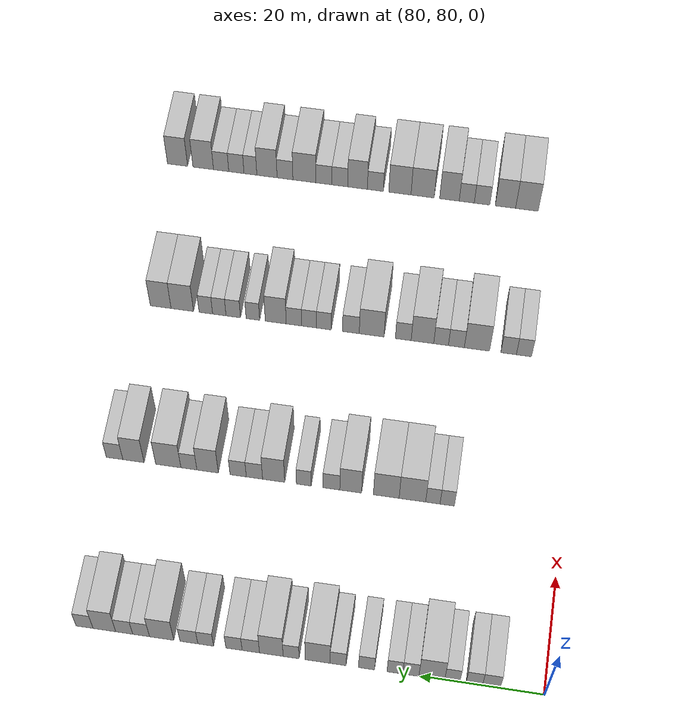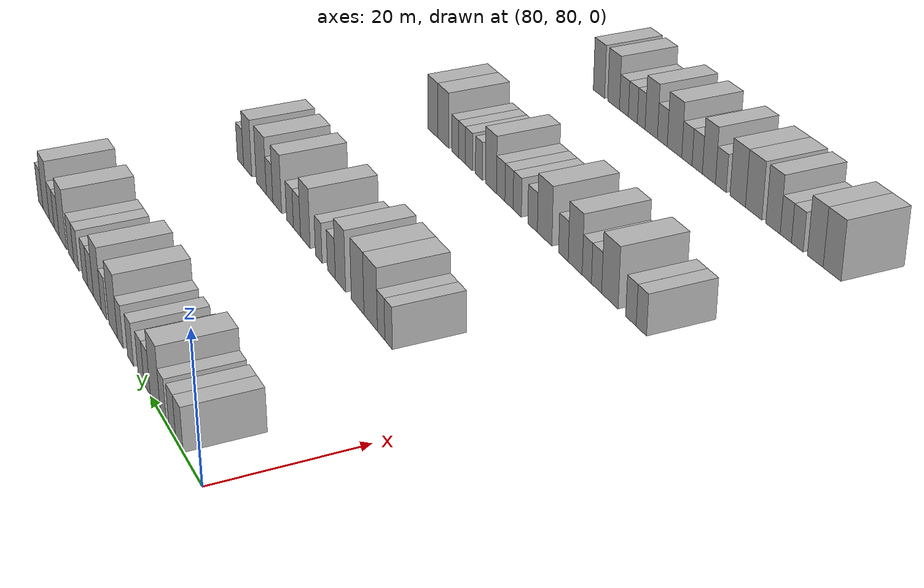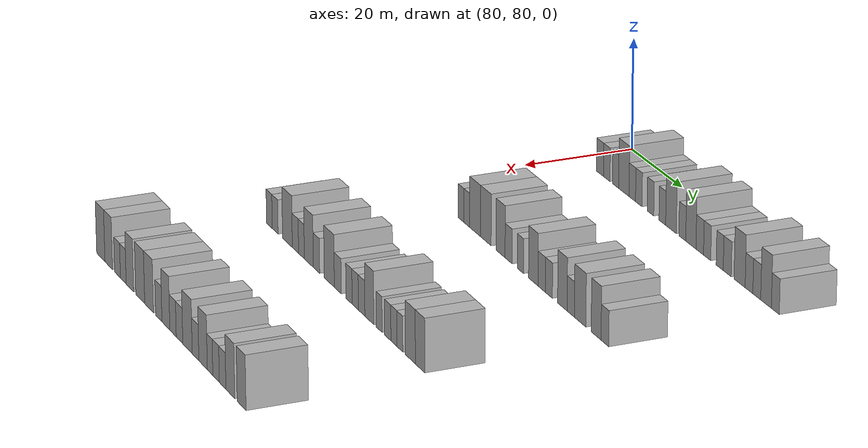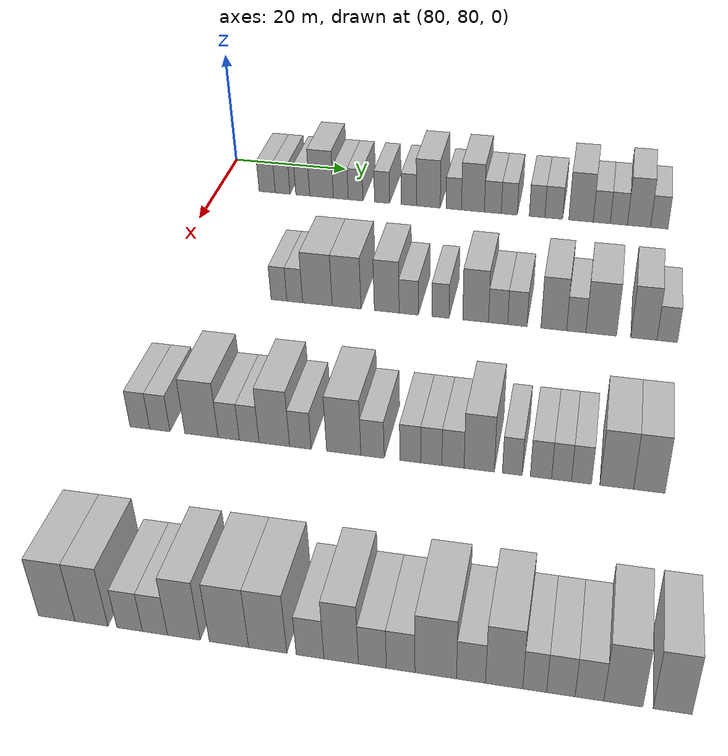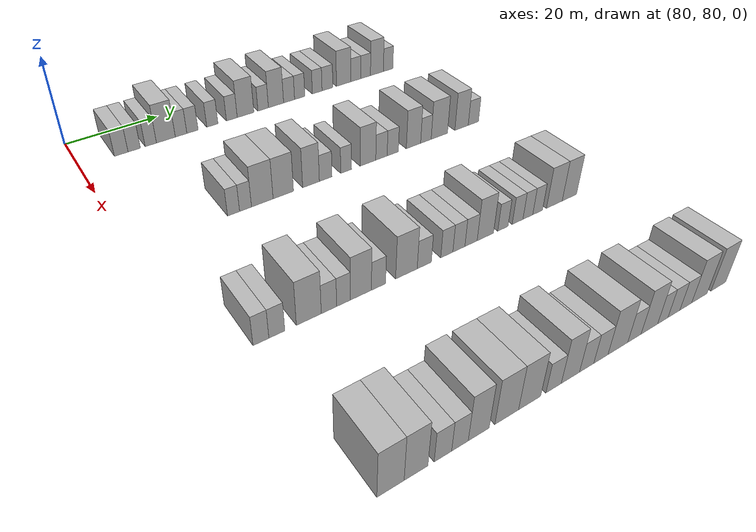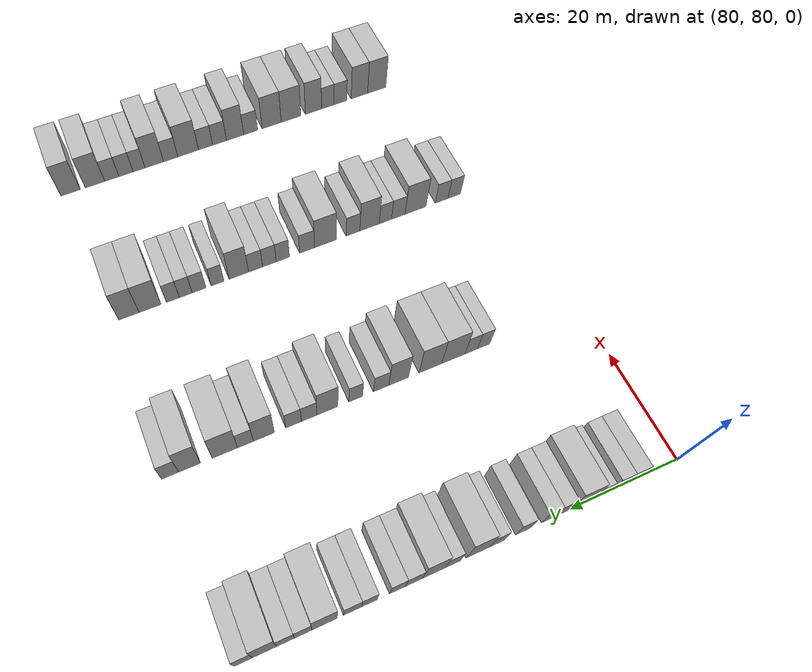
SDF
<sdf version="1.6">
 <world name="default">
  <model name="building_591">
   <static>1</static>
   <pose>85.0000 88.5599 0 0.000000 0.000000 0.000000</pose>
   <link name="link">
    <pose>0 0 3.00 0 0 0</pose>
    <collision name="collision"><geometry><box><size>10.0000 2.8432 6.0000</size></box></geometry></collision>
    <visual name="visual">
     <cast_shadows>0</cast_shadows>
     <geometry><box><size>10.0000 2.8432 6.0000</size></box></geometry>
     <material>
      <script>
       <uri>model://HANNAS_wall/materials/scripts</uri>
       <uri>model://HANNAS_wall/materials/textures</uri>
       <name>vrc/HANNAS_wall</name>
      </script>
     </material>
    </visual>
   </link>
  </model>
  <model name="building_592">
   <static>1</static>
   <pose>85.0000 91.2887 0 0.000000 0.000000 0.000000</pose>
   <link name="link">
    <pose>0 0 3.00 0 0 0</pose>
    <collision name="collision"><geometry><box><size>10.0000 2.6145 6.0000</size></box></geometry></collision>
    <visual name="visual">
     <cast_shadows>0</cast_shadows>
     <geometry><box><size>10.0000 2.6145 6.0000</size></box></geometry>
     <material>
      <script>
       <uri>model://HANNAS_wall/materials/scripts</uri>
       <uri>model://HANNAS_wall/materials/textures</uri>
       <name>vrc/HANNAS_wall</name>
      </script>
     </material>
    </visual>
   </link>
  </model>
  <model name="building_593">
   <static>1</static>
   <pose>85.0000 94.8194 0 0.000000 0.000000 0.000000</pose>
   <link name="link">
    <pose>0 0 3.00 0 0 0</pose>
    <collision name="collision"><geometry><box><size>10.0000 2.4469 6.0000</size></box></geometry></collision>
    <visual name="visual">
     <cast_shadows>0</cast_shadows>
     <geometry><box><size>10.0000 2.4469 6.0000</size></box></geometry>
     <material>
      <script>
       <uri>model://HANNAS_wall/materials/scripts</uri>
       <uri>model://HANNAS_wall/materials/textures</uri>
       <name>vrc/HANNAS_wall</name>
      </script>
     </material>
    </visual>
   </link>
  </model>
  <model name="building_594">
   <static>1</static>
   <pose>85.0000 98.1114 0 0.000000 0.000000 0.000000</pose>
   <link name="link">
    <pose>0 0 4.50 0 0 0</pose>
    <collision name="collision"><geometry><box><size>10.0000 4.1371 9.0000</size></box></geometry></collision>
    <visual name="visual">
     <cast_shadows>0</cast_shadows>
     <geometry><box><size>10.0000 4.1371 9.0000</size></box></geometry>
     <material>
      <script>
       <uri>model://HANNAS_wall/materials/scripts</uri>
       <uri>model://HANNAS_wall/materials/textures</uri>
       <name>vrc/HANNAS_wall</name>
      </script>
     </material>
    </visual>
   </link>
  </model>
  <model name="building_595">
   <static>1</static>
   <pose>85.0000 101.4752 0 0.000000 0.000000 0.000000</pose>
   <link name="link">
    <pose>0 0 3.00 0 0 0</pose>
    <collision name="collision"><geometry><box><size>10.0000 2.5905 6.0000</size></box></geometry></collision>
    <visual name="visual">
     <cast_shadows>0</cast_shadows>
     <geometry><box><size>10.0000 2.5905 6.0000</size></box></geometry>
     <material>
      <script>
       <uri>model://HANNAS_wall/materials/scripts</uri>
       <uri>model://HANNAS_wall/materials/textures</uri>
       <name>vrc/HANNAS_wall</name>
      </script>
     </material>
    </visual>
   </link>
  </model>
  <model name="building_596">
   <static>1</static>
   <pose>85.0000 104.0424 0 0.000000 0.000000 0.000000</pose>
   <link name="link">
    <pose>0 0 3.00 0 0 0</pose>
    <collision name="collision"><geometry><box><size>10.0000 2.5439 6.0000</size></box></geometry></collision>
    <visual name="visual">
     <cast_shadows>0</cast_shadows>
     <geometry><box><size>10.0000 2.5439 6.0000</size></box></geometry>
     <material>
      <script>
       <uri>model://HANNAS_wall/materials/scripts</uri>
       <uri>model://HANNAS_wall/materials/textures</uri>
       <name>vrc/HANNAS_wall</name>
      </script>
     </material>
    </visual>
   </link>
  </model>
  <model name="building_597">
   <static>1</static>
   <pose>85.0000 108.6125 0 0.000000 0.000000 0.000000</pose>
   <link name="link">
    <pose>0 0 3.00 0 0 0</pose>
    <collision name="collision"><geometry><box><size>10.0000 2.5963 6.0000</size></box></geometry></collision>
    <visual name="visual">
     <cast_shadows>0</cast_shadows>
     <geometry><box><size>10.0000 2.5963 6.0000</size></box></geometry>
     <material>
      <script>
       <uri>model://HANNAS_wall/materials/scripts</uri>
       <uri>model://HANNAS_wall/materials/textures</uri>
       <name>vrc/HANNAS_wall</name>
      </script>
     </material>
    </visual>
   </link>
  </model>
  <model name="building_598">
   <static>1</static>
   <pose>85.0000 113.1998 0 0.000000 0.000000 0.000000</pose>
   <link name="link">
    <pose>0 0 3.00 0 0 0</pose>
    <collision name="collision"><geometry><box><size>10.0000 2.5784 6.0000</size></box></geometry></collision>
    <visual name="visual">
     <cast_shadows>0</cast_shadows>
     <geometry><box><size>10.0000 2.5784 6.0000</size></box></geometry>
     <material>
      <script>
       <uri>model://HANNAS_wall/materials/scripts</uri>
       <uri>model://HANNAS_wall/materials/textures</uri>
       <name>vrc/HANNAS_wall</name>
      </script>
     </material>
    </visual>
   </link>
  </model>
  <model name="building_599">
   <static>1</static>
   <pose>85.0000 116.5124 0 0.000000 0.000000 0.000000</pose>
   <link name="link">
    <pose>0 0 4.50 0 0 0</pose>
    <collision name="collision"><geometry><box><size>10.0000 4.0468 9.0000</size></box></geometry></collision>
    <visual name="visual">
     <cast_shadows>0</cast_shadows>
     <geometry><box><size>10.0000 4.0468 9.0000</size></box></geometry>
     <material>
      <script>
       <uri>model://HANNAS_wall/materials/scripts</uri>
       <uri>model://HANNAS_wall/materials/textures</uri>
       <name>vrc/HANNAS_wall</name>
      </script>
     </material>
    </visual>
   </link>
  </model>
  <model name="building_600">
   <static>1</static>
   <pose>85.0000 120.8324 0 0.000000 0.000000 0.000000</pose>
   <link name="link">
    <pose>0 0 3.00 0 0 0</pose>
    <collision name="collision"><geometry><box><size>10.0000 2.5931 6.0000</size></box></geometry></collision>
    <visual name="visual">
     <cast_shadows>0</cast_shadows>
     <geometry><box><size>10.0000 2.5931 6.0000</size></box></geometry>
     <material>
      <script>
       <uri>model://HANNAS_wall/materials/scripts</uri>
       <uri>model://HANNAS_wall/materials/textures</uri>
       <name>vrc/HANNAS_wall</name>
      </script>
     </material>
    </visual>
   </link>
  </model>
  <model name="building_601">
   <static>1</static>
   <pose>85.0000 124.0520 0 0.000000 0.000000 0.000000</pose>
   <link name="link">
    <pose>0 0 4.50 0 0 0</pose>
    <collision name="collision"><geometry><box><size>10.0000 3.8462 9.0000</size></box></geometry></collision>
    <visual name="visual">
     <cast_shadows>0</cast_shadows>
     <geometry><box><size>10.0000 3.8462 9.0000</size></box></geometry>
     <material>
      <script>
       <uri>model://HANNAS_wall/materials/scripts</uri>
       <uri>model://HANNAS_wall/materials/textures</uri>
       <name>vrc/HANNAS_wall</name>
      </script>
     </material>
    </visual>
   </link>
  </model>
  <model name="building_602">
   <static>1</static>
   <pose>85.0000 127.3873 0 0.000000 0.000000 0.000000</pose>
   <link name="link">
    <pose>0 0 3.00 0 0 0</pose>
    <collision name="collision"><geometry><box><size>10.0000 2.8244 6.0000</size></box></geometry></collision>
    <visual name="visual">
     <cast_shadows>0</cast_shadows>
     <geometry><box><size>10.0000 2.8244 6.0000</size></box></geometry>
     <material>
      <script>
       <uri>model://HANNAS_wall/materials/scripts</uri>
       <uri>model://HANNAS_wall/materials/textures</uri>
       <name>vrc/HANNAS_wall</name>
      </script>
     </material>
    </visual>
   </link>
  </model>
  <model name="building_603">
   <static>1</static>
   <pose>85.0000 130.1325 0 0.000000 0.000000 0.000000</pose>
   <link name="link">
    <pose>0 0 3.00 0 0 0</pose>
    <collision name="collision"><geometry><box><size>10.0000 2.6658 6.0000</size></box></geometry></collision>
    <visual name="visual">
     <cast_shadows>0</cast_shadows>
     <geometry><box><size>10.0000 2.6658 6.0000</size></box></geometry>
     <material>
      <script>
       <uri>model://HANNAS_wall/materials/scripts</uri>
       <uri>model://HANNAS_wall/materials/textures</uri>
       <name>vrc/HANNAS_wall</name>
      </script>
     </material>
    </visual>
   </link>
  </model>
  <model name="building_604">
   <static>1</static>
   <pose>85.0000 134.7559 0 0.000000 0.000000 0.000000</pose>
   <link name="link">
    <pose>0 0 3.00 0 0 0</pose>
    <collision name="collision"><geometry><box><size>10.0000 2.5810 6.0000</size></box></geometry></collision>
    <visual name="visual">
     <cast_shadows>0</cast_shadows>
     <geometry><box><size>10.0000 2.5810 6.0000</size></box></geometry>
     <material>
      <script>
       <uri>model://HANNAS_wall/materials/scripts</uri>
       <uri>model://HANNAS_wall/materials/textures</uri>
       <name>vrc/HANNAS_wall</name>
      </script>
     </material>
    </visual>
   </link>
  </model>
  <model name="building_605">
   <static>1</static>
   <pose>85.0000 137.5102 0 0.000000 0.000000 0.000000</pose>
   <link name="link">
    <pose>0 0 3.00 0 0 0</pose>
    <collision name="collision"><geometry><box><size>10.0000 2.9276 6.0000</size></box></geometry></collision>
    <visual name="visual">
     <cast_shadows>0</cast_shadows>
     <geometry><box><size>10.0000 2.9276 6.0000</size></box></geometry>
     <material>
      <script>
       <uri>model://HANNAS_wall/materials/scripts</uri>
       <uri>model://HANNAS_wall/materials/textures</uri>
       <name>vrc/HANNAS_wall</name>
      </script>
     </material>
    </visual>
   </link>
  </model>
  <model name="building_606">
   <static>1</static>
   <pose>85.0000 141.9765 0 0.000000 0.000000 0.000000</pose>
   <link name="link">
    <pose>0 0 4.50 0 0 0</pose>
    <collision name="collision"><geometry><box><size>10.0000 4.0051 9.0000</size></box></geometry></collision>
    <visual name="visual">
     <cast_shadows>0</cast_shadows>
     <geometry><box><size>10.0000 4.0051 9.0000</size></box></geometry>
     <material>
      <script>
       <uri>model://HANNAS_wall/materials/scripts</uri>
       <uri>model://HANNAS_wall/materials/textures</uri>
       <name>vrc/HANNAS_wall</name>
      </script>
     </material>
    </visual>
   </link>
  </model>
  <model name="building_607">
   <static>1</static>
   <pose>85.0000 145.3599 0 0.000000 0.000000 0.000000</pose>
   <link name="link">
    <pose>0 0 3.00 0 0 0</pose>
    <collision name="collision"><geometry><box><size>10.0000 2.7617 6.0000</size></box></geometry></collision>
    <visual name="visual">
     <cast_shadows>0</cast_shadows>
     <geometry><box><size>10.0000 2.7617 6.0000</size></box></geometry>
     <material>
      <script>
       <uri>model://HANNAS_wall/materials/scripts</uri>
       <uri>model://HANNAS_wall/materials/textures</uri>
       <name>vrc/HANNAS_wall</name>
      </script>
     </material>
    </visual>
   </link>
  </model>
  <model name="building_608">
   <static>1</static>
   <pose>85.0000 148.1356 0 0.000000 0.000000 0.000000</pose>
   <link name="link">
    <pose>0 0 3.00 0 0 0</pose>
    <collision name="collision"><geometry><box><size>10.0000 2.7896 6.0000</size></box></geometry></collision>
    <visual name="visual">
     <cast_shadows>0</cast_shadows>
     <geometry><box><size>10.0000 2.7896 6.0000</size></box></geometry>
     <material>
      <script>
       <uri>model://HANNAS_wall/materials/scripts</uri>
       <uri>model://HANNAS_wall/materials/textures</uri>
       <name>vrc/HANNAS_wall</name>
      </script>
     </material>
    </visual>
   </link>
  </model>
  <model name="building_609">
   <static>1</static>
   <pose>85.0000 151.4025 0 0.000000 0.000000 0.000000</pose>
   <link name="link">
    <pose>0 0 4.50 0 0 0</pose>
    <collision name="collision"><geometry><box><size>10.0000 3.7443 9.0000</size></box></geometry></collision>
    <visual name="visual">
     <cast_shadows>0</cast_shadows>
     <geometry><box><size>10.0000 3.7443 9.0000</size></box></geometry>
     <material>
      <script>
       <uri>model://HANNAS_wall/materials/scripts</uri>
       <uri>model://HANNAS_wall/materials/textures</uri>
       <name>vrc/HANNAS_wall</name>
      </script>
     </material>
    </visual>
   </link>
  </model>
  <model name="building_610">
   <static>1</static>
   <pose>85.0000 154.6747 0 0.000000 0.000000 0.000000</pose>
   <link name="link">
    <pose>0 0 3.00 0 0 0</pose>
    <collision name="collision"><geometry><box><size>10.0000 2.7999 6.0000</size></box></geometry></collision>
    <visual name="visual">
     <cast_shadows>0</cast_shadows>
     <geometry><box><size>10.0000 2.7999 6.0000</size></box></geometry>
     <material>
      <script>
       <uri>model://HANNAS_wall/materials/scripts</uri>
       <uri>model://HANNAS_wall/materials/textures</uri>
       <name>vrc/HANNAS_wall</name>
      </script>
     </material>
    </visual>
   </link>
  </model>
  <model name="building_817">
   <static>1</static>
   <pose>115.0000 99.2062 0 0.000000 0.000000 0.000000</pose>
   <link name="link">
    <pose>0 0 3.00 0 0 0</pose>
    <collision name="collision"><geometry><box><size>10.0000 2.4151 6.0000</size></box></geometry></collision>
    <visual name="visual">
     <cast_shadows>0</cast_shadows>
     <geometry><box><size>10.0000 2.4151 6.0000</size></box></geometry>
     <material>
      <script>
       <uri>model://HANNAS_wall/materials/scripts</uri>
       <uri>model://HANNAS_wall/materials/textures</uri>
       <name>vrc/HANNAS_wall</name>
      </script>
     </material>
    </visual>
   </link>
  </model>
  <model name="building_818">
   <static>1</static>
   <pose>115.0000 101.6250 0 0.000000 0.000000 0.000000</pose>
   <link name="link">
    <pose>0 0 3.00 0 0 0</pose>
    <collision name="collision"><geometry><box><size>10.0000 2.4226 6.0000</size></box></geometry></collision>
    <visual name="visual">
     <cast_shadows>0</cast_shadows>
     <geometry><box><size>10.0000 2.4226 6.0000</size></box></geometry>
     <material>
      <script>
       <uri>model://HANNAS_wall/materials/scripts</uri>
       <uri>model://HANNAS_wall/materials/textures</uri>
       <name>vrc/HANNAS_wall</name>
      </script>
     </material>
    </visual>
   </link>
  </model>
  <model name="building_819">
   <static>1</static>
   <pose>115.0000 105.0814 0 0.000000 0.000000 0.000000</pose>
   <link name="link">
    <pose>0 0 4.50 0 0 0</pose>
    <collision name="collision"><geometry><box><size>10.0000 4.4901 9.0000</size></box></geometry></collision>
    <visual name="visual">
     <cast_shadows>0</cast_shadows>
     <geometry><box><size>10.0000 4.4901 9.0000</size></box></geometry>
     <material>
      <script>
       <uri>model://HANNAS_wall/materials/scripts</uri>
       <uri>model://HANNAS_wall/materials/textures</uri>
       <name>vrc/HANNAS_wall</name>
      </script>
     </material>
    </visual>
   </link>
  </model>
  <model name="building_820">
   <static>1</static>
   <pose>115.0000 109.5029 0 0.000000 0.000000 0.000000</pose>
   <link name="link">
    <pose>0 0 4.50 0 0 0</pose>
    <collision name="collision"><geometry><box><size>10.0000 4.3530 9.0000</size></box></geometry></collision>
    <visual name="visual">
     <cast_shadows>0</cast_shadows>
     <geometry><box><size>10.0000 4.3530 9.0000</size></box></geometry>
     <material>
      <script>
       <uri>model://HANNAS_wall/materials/scripts</uri>
       <uri>model://HANNAS_wall/materials/textures</uri>
       <name>vrc/HANNAS_wall</name>
      </script>
     </material>
    </visual>
   </link>
  </model>
  <model name="building_821">
   <static>1</static>
   <pose>115.0000 115.5284 0 0.000000 0.000000 0.000000</pose>
   <link name="link">
    <pose>0 0 4.50 0 0 0</pose>
    <collision name="collision"><geometry><box><size>10.0000 3.6979 9.0000</size></box></geometry></collision>
    <visual name="visual">
     <cast_shadows>0</cast_shadows>
     <geometry><box><size>10.0000 3.6979 9.0000</size></box></geometry>
     <material>
      <script>
       <uri>model://HANNAS_wall/materials/scripts</uri>
       <uri>model://HANNAS_wall/materials/textures</uri>
       <name>vrc/HANNAS_wall</name>
      </script>
     </material>
    </visual>
   </link>
  </model>
  <model name="building_822">
   <static>1</static>
   <pose>115.0000 118.8068 0 0.000000 0.000000 0.000000</pose>
   <link name="link">
    <pose>0 0 3.00 0 0 0</pose>
    <collision name="collision"><geometry><box><size>10.0000 2.8588 6.0000</size></box></geometry></collision>
    <visual name="visual">
     <cast_shadows>0</cast_shadows>
     <geometry><box><size>10.0000 2.8588 6.0000</size></box></geometry>
     <material>
      <script>
       <uri>model://HANNAS_wall/materials/scripts</uri>
       <uri>model://HANNAS_wall/materials/textures</uri>
       <name>vrc/HANNAS_wall</name>
      </script>
     </material>
    </visual>
   </link>
  </model>
  <model name="building_823">
   <static>1</static>
   <pose>115.0000 123.4999 0 0.000000 0.000000 0.000000</pose>
   <link name="link">
    <pose>0 0 3.00 0 0 0</pose>
    <collision name="collision"><geometry><box><size>10.0000 2.5275 6.0000</size></box></geometry></collision>
    <visual name="visual">
     <cast_shadows>0</cast_shadows>
     <geometry><box><size>10.0000 2.5275 6.0000</size></box></geometry>
     <material>
      <script>
       <uri>model://HANNAS_wall/materials/scripts</uri>
       <uri>model://HANNAS_wall/materials/textures</uri>
       <name>vrc/HANNAS_wall</name>
      </script>
     </material>
    </visual>
   </link>
  </model>
  <model name="building_824">
   <static>1</static>
   <pose>115.0000 128.6530 0 0.000000 0.000000 0.000000</pose>
   <link name="link">
    <pose>0 0 4.50 0 0 0</pose>
    <collision name="collision"><geometry><box><size>10.0000 3.7787 9.0000</size></box></geometry></collision>
    <visual name="visual">
     <cast_shadows>0</cast_shadows>
     <geometry><box><size>10.0000 3.7787 9.0000</size></box></geometry>
     <material>
      <script>
       <uri>model://HANNAS_wall/materials/scripts</uri>
       <uri>model://HANNAS_wall/materials/textures</uri>
       <name>vrc/HANNAS_wall</name>
      </script>
     </material>
    </visual>
   </link>
  </model>
  <model name="building_825">
   <static>1</static>
   <pose>115.0000 131.9373 0 0.000000 0.000000 0.000000</pose>
   <link name="link">
    <pose>0 0 3.00 0 0 0</pose>
    <collision name="collision"><geometry><box><size>10.0000 2.7900 6.0000</size></box></geometry></collision>
    <visual name="visual">
     <cast_shadows>0</cast_shadows>
     <geometry><box><size>10.0000 2.7900 6.0000</size></box></geometry>
     <material>
      <script>
       <uri>model://HANNAS_wall/materials/scripts</uri>
       <uri>model://HANNAS_wall/materials/textures</uri>
       <name>vrc/HANNAS_wall</name>
      </script>
     </material>
    </visual>
   </link>
  </model>
  <model name="building_826">
   <static>1</static>
   <pose>115.0000 134.7272 0 0.000000 0.000000 0.000000</pose>
   <link name="link">
    <pose>0 0 3.00 0 0 0</pose>
    <collision name="collision"><geometry><box><size>10.0000 2.7896 6.0000</size></box></geometry></collision>
    <visual name="visual">
     <cast_shadows>0</cast_shadows>
     <geometry><box><size>10.0000 2.7896 6.0000</size></box></geometry>
     <material>
      <script>
       <uri>model://HANNAS_wall/materials/scripts</uri>
       <uri>model://HANNAS_wall/materials/textures</uri>
       <name>vrc/HANNAS_wall</name>
      </script>
     </material>
    </visual>
   </link>
  </model>
  <model name="building_827">
   <static>1</static>
   <pose>115.0000 139.9612 0 0.000000 0.000000 0.000000</pose>
   <link name="link">
    <pose>0 0 4.50 0 0 0</pose>
    <collision name="collision"><geometry><box><size>10.0000 3.6786 9.0000</size></box></geometry></collision>
    <visual name="visual">
     <cast_shadows>0</cast_shadows>
     <geometry><box><size>10.0000 3.6786 9.0000</size></box></geometry>
     <material>
      <script>
       <uri>model://HANNAS_wall/materials/scripts</uri>
       <uri>model://HANNAS_wall/materials/textures</uri>
       <name>vrc/HANNAS_wall</name>
      </script>
     </material>
    </visual>
   </link>
  </model>
  <model name="building_828">
   <static>1</static>
   <pose>115.0000 143.1754 0 0.000000 0.000000 0.000000</pose>
   <link name="link">
    <pose>0 0 3.00 0 0 0</pose>
    <collision name="collision"><geometry><box><size>10.0000 2.7498 6.0000</size></box></geometry></collision>
    <visual name="visual">
     <cast_shadows>0</cast_shadows>
     <geometry><box><size>10.0000 2.7498 6.0000</size></box></geometry>
     <material>
      <script>
       <uri>model://HANNAS_wall/materials/scripts</uri>
       <uri>model://HANNAS_wall/materials/textures</uri>
       <name>vrc/HANNAS_wall</name>
      </script>
     </material>
    </visual>
   </link>
  </model>
  <model name="building_829">
   <static>1</static>
   <pose>115.0000 146.7240 0 0.000000 0.000000 0.000000</pose>
   <link name="link">
    <pose>0 0 4.50 0 0 0</pose>
    <collision name="collision"><geometry><box><size>10.0000 4.3474 9.0000</size></box></geometry></collision>
    <visual name="visual">
     <cast_shadows>0</cast_shadows>
     <geometry><box><size>10.0000 4.3474 9.0000</size></box></geometry>
     <material>
      <script>
       <uri>model://HANNAS_wall/materials/scripts</uri>
       <uri>model://HANNAS_wall/materials/textures</uri>
       <name>vrc/HANNAS_wall</name>
      </script>
     </material>
    </visual>
   </link>
  </model>
  <model name="building_830">
   <static>1</static>
   <pose>115.0000 152.7351 0 0.000000 0.000000 0.000000</pose>
   <link name="link">
    <pose>0 0 4.50 0 0 0</pose>
    <collision name="collision"><geometry><box><size>10.0000 3.6748 9.0000</size></box></geometry></collision>
    <visual name="visual">
     <cast_shadows>0</cast_shadows>
     <geometry><box><size>10.0000 3.6748 9.0000</size></box></geometry>
     <material>
      <script>
       <uri>model://HANNAS_wall/materials/scripts</uri>
       <uri>model://HANNAS_wall/materials/textures</uri>
       <name>vrc/HANNAS_wall</name>
      </script>
     </material>
    </visual>
   </link>
  </model>
  <model name="building_831">
   <static>1</static>
   <pose>115.0000 156.0014 0 0.000000 0.000000 0.000000</pose>
   <link name="link">
    <pose>0 0 3.00 0 0 0</pose>
    <collision name="collision"><geometry><box><size>10.0000 2.8578 6.0000</size></box></geometry></collision>
    <visual name="visual">
     <cast_shadows>0</cast_shadows>
     <geometry><box><size>10.0000 2.8578 6.0000</size></box></geometry>
     <material>
      <script>
       <uri>model://HANNAS_wall/materials/scripts</uri>
       <uri>model://HANNAS_wall/materials/textures</uri>
       <name>vrc/HANNAS_wall</name>
      </script>
     </material>
    </visual>
   </link>
  </model>
  <model name="building_1053">
   <static>1</static>
   <pose>145.0000 89.2876 0 0.000000 0.000000 0.000000</pose>
   <link name="link">
    <pose>0 0 3.00 0 0 0</pose>
    <collision name="collision"><geometry><box><size>10.0000 2.6560 6.0000</size></box></geometry></collision>
    <visual name="visual">
     <cast_shadows>0</cast_shadows>
     <geometry><box><size>10.0000 2.6560 6.0000</size></box></geometry>
     <material>
      <script>
       <uri>model://HANNAS_wall/materials/scripts</uri>
       <uri>model://HANNAS_wall/materials/textures</uri>
       <name>vrc/HANNAS_wall</name>
      </script>
     </material>
    </visual>
   </link>
  </model>
  <model name="building_1054">
   <static>1</static>
   <pose>145.0000 91.9745 0 0.000000 0.000000 0.000000</pose>
   <link name="link">
    <pose>0 0 3.00 0 0 0</pose>
    <collision name="collision"><geometry><box><size>10.0000 2.7177 6.0000</size></box></geometry></collision>
    <visual name="visual">
     <cast_shadows>0</cast_shadows>
     <geometry><box><size>10.0000 2.7177 6.0000</size></box></geometry>
     <material>
      <script>
       <uri>model://HANNAS_wall/materials/scripts</uri>
       <uri>model://HANNAS_wall/materials/textures</uri>
       <name>vrc/HANNAS_wall</name>
      </script>
     </material>
    </visual>
   </link>
  </model>
  <model name="building_1055">
   <static>1</static>
   <pose>145.0000 97.5526 0 0.000000 0.000000 0.000000</pose>
   <link name="link">
    <pose>0 0 4.50 0 0 0</pose>
    <collision name="collision"><geometry><box><size>10.0000 4.4385 9.0000</size></box></geometry></collision>
    <visual name="visual">
     <cast_shadows>0</cast_shadows>
     <geometry><box><size>10.0000 4.4385 9.0000</size></box></geometry>
     <material>
      <script>
       <uri>model://HANNAS_wall/materials/scripts</uri>
       <uri>model://HANNAS_wall/materials/textures</uri>
       <name>vrc/HANNAS_wall</name>
      </script>
     </material>
    </visual>
   </link>
  </model>
  <model name="building_1056">
   <static>1</static>
   <pose>145.0000 101.1746 0 0.000000 0.000000 0.000000</pose>
   <link name="link">
    <pose>0 0 3.00 0 0 0</pose>
    <collision name="collision"><geometry><box><size>10.0000 2.8057 6.0000</size></box></geometry></collision>
    <visual name="visual">
     <cast_shadows>0</cast_shadows>
     <geometry><box><size>10.0000 2.8057 6.0000</size></box></geometry>
     <material>
      <script>
       <uri>model://HANNAS_wall/materials/scripts</uri>
       <uri>model://HANNAS_wall/materials/textures</uri>
       <name>vrc/HANNAS_wall</name>
      </script>
     </material>
    </visual>
   </link>
  </model>
  <model name="building_1057">
   <static>1</static>
   <pose>145.0000 103.8728 0 0.000000 0.000000 0.000000</pose>
   <link name="link">
    <pose>0 0 3.00 0 0 0</pose>
    <collision name="collision"><geometry><box><size>10.0000 2.5907 6.0000</size></box></geometry></collision>
    <visual name="visual">
     <cast_shadows>0</cast_shadows>
     <geometry><box><size>10.0000 2.5907 6.0000</size></box></geometry>
     <material>
      <script>
       <uri>model://HANNAS_wall/materials/scripts</uri>
       <uri>model://HANNAS_wall/materials/textures</uri>
       <name>vrc/HANNAS_wall</name>
      </script>
     </material>
    </visual>
   </link>
  </model>
  <model name="building_1058">
   <static>1</static>
   <pose>145.0000 107.1646 0 0.000000 0.000000 0.000000</pose>
   <link name="link">
    <pose>0 0 4.50 0 0 0</pose>
    <collision name="collision"><geometry><box><size>10.0000 3.9927 9.0000</size></box></geometry></collision>
    <visual name="visual">
     <cast_shadows>0</cast_shadows>
     <geometry><box><size>10.0000 3.9927 9.0000</size></box></geometry>
     <material>
      <script>
       <uri>model://HANNAS_wall/materials/scripts</uri>
       <uri>model://HANNAS_wall/materials/textures</uri>
       <name>vrc/HANNAS_wall</name>
      </script>
     </material>
    </visual>
   </link>
  </model>
  <model name="building_1059">
   <static>1</static>
   <pose>145.0000 110.5606 0 0.000000 0.000000 0.000000</pose>
   <link name="link">
    <pose>0 0 3.00 0 0 0</pose>
    <collision name="collision"><geometry><box><size>10.0000 2.7993 6.0000</size></box></geometry></collision>
    <visual name="visual">
     <cast_shadows>0</cast_shadows>
     <geometry><box><size>10.0000 2.7993 6.0000</size></box></geometry>
     <material>
      <script>
       <uri>model://HANNAS_wall/materials/scripts</uri>
       <uri>model://HANNAS_wall/materials/textures</uri>
       <name>vrc/HANNAS_wall</name>
      </script>
     </material>
    </visual>
   </link>
  </model>
  <model name="building_1060">
   <static>1</static>
   <pose>145.0000 116.1626 0 0.000000 0.000000 0.000000</pose>
   <link name="link">
    <pose>0 0 4.50 0 0 0</pose>
    <collision name="collision"><geometry><box><size>10.0000 4.4048 9.0000</size></box></geometry></collision>
    <visual name="visual">
     <cast_shadows>0</cast_shadows>
     <geometry><box><size>10.0000 4.4048 9.0000</size></box></geometry>
     <material>
      <script>
       <uri>model://HANNAS_wall/materials/scripts</uri>
       <uri>model://HANNAS_wall/materials/textures</uri>
       <name>vrc/HANNAS_wall</name>
      </script>
     </material>
    </visual>
   </link>
  </model>
  <model name="building_1061">
   <static>1</static>
   <pose>145.0000 119.8513 0 0.000000 0.000000 0.000000</pose>
   <link name="link">
    <pose>0 0 3.00 0 0 0</pose>
    <collision name="collision"><geometry><box><size>10.0000 2.9725 6.0000</size></box></geometry></collision>
    <visual name="visual">
     <cast_shadows>0</cast_shadows>
     <geometry><box><size>10.0000 2.9725 6.0000</size></box></geometry>
     <material>
      <script>
       <uri>model://HANNAS_wall/materials/scripts</uri>
       <uri>model://HANNAS_wall/materials/textures</uri>
       <name>vrc/HANNAS_wall</name>
      </script>
     </material>
    </visual>
   </link>
  </model>
  <model name="building_1062">
   <static>1</static>
   <pose>145.0000 124.6513 0 0.000000 0.000000 0.000000</pose>
   <link name="link">
    <pose>0 0 3.00 0 0 0</pose>
    <collision name="collision"><geometry><box><size>10.0000 2.6275 6.0000</size></box></geometry></collision>
    <visual name="visual">
     <cast_shadows>0</cast_shadows>
     <geometry><box><size>10.0000 2.6275 6.0000</size></box></geometry>
     <material>
      <script>
       <uri>model://HANNAS_wall/materials/scripts</uri>
       <uri>model://HANNAS_wall/materials/textures</uri>
       <name>vrc/HANNAS_wall</name>
      </script>
     </material>
    </visual>
   </link>
  </model>
  <model name="building_1063">
   <static>1</static>
   <pose>145.0000 127.2939 0 0.000000 0.000000 0.000000</pose>
   <link name="link">
    <pose>0 0 3.00 0 0 0</pose>
    <collision name="collision"><geometry><box><size>10.0000 2.6578 6.0000</size></box></geometry></collision>
    <visual name="visual">
     <cast_shadows>0</cast_shadows>
     <geometry><box><size>10.0000 2.6578 6.0000</size></box></geometry>
     <material>
      <script>
       <uri>model://HANNAS_wall/materials/scripts</uri>
       <uri>model://HANNAS_wall/materials/textures</uri>
       <name>vrc/HANNAS_wall</name>
      </script>
     </material>
    </visual>
   </link>
  </model>
  <model name="building_1064">
   <static>1</static>
   <pose>145.0000 130.0022 0 0.000000 0.000000 0.000000</pose>
   <link name="link">
    <pose>0 0 3.00 0 0 0</pose>
    <collision name="collision"><geometry><box><size>10.0000 2.7588 6.0000</size></box></geometry></collision>
    <visual name="visual">
     <cast_shadows>0</cast_shadows>
     <geometry><box><size>10.0000 2.7588 6.0000</size></box></geometry>
     <material>
      <script>
       <uri>model://HANNAS_wall/materials/scripts</uri>
       <uri>model://HANNAS_wall/materials/textures</uri>
       <name>vrc/HANNAS_wall</name>
      </script>
     </material>
    </visual>
   </link>
  </model>
  <model name="building_1065">
   <static>1</static>
   <pose>145.0000 133.2563 0 0.000000 0.000000 0.000000</pose>
   <link name="link">
    <pose>0 0 4.50 0 0 0</pose>
    <collision name="collision"><geometry><box><size>10.0000 3.7495 9.0000</size></box></geometry></collision>
    <visual name="visual">
     <cast_shadows>0</cast_shadows>
     <geometry><box><size>10.0000 3.7495 9.0000</size></box></geometry>
     <material>
      <script>
       <uri>model://HANNAS_wall/materials/scripts</uri>
       <uri>model://HANNAS_wall/materials/textures</uri>
       <name>vrc/HANNAS_wall</name>
      </script>
     </material>
    </visual>
   </link>
  </model>
  <model name="building_1066">
   <static>1</static>
   <pose>145.0000 137.3476 0 0.000000 0.000000 0.000000</pose>
   <link name="link">
    <pose>0 0 3.00 0 0 0</pose>
    <collision name="collision"><geometry><box><size>10.0000 2.4330 6.0000</size></box></geometry></collision>
    <visual name="visual">
     <cast_shadows>0</cast_shadows>
     <geometry><box><size>10.0000 2.4330 6.0000</size></box></geometry>
     <material>
      <script>
       <uri>model://HANNAS_wall/materials/scripts</uri>
       <uri>model://HANNAS_wall/materials/textures</uri>
       <name>vrc/HANNAS_wall</name>
      </script>
     </material>
    </visual>
   </link>
  </model>
  <model name="building_1067">
   <static>1</static>
   <pose>145.0000 140.8643 0 0.000000 0.000000 0.000000</pose>
   <link name="link">
    <pose>0 0 3.00 0 0 0</pose>
    <collision name="collision"><geometry><box><size>10.0000 2.6004 6.0000</size></box></geometry></collision>
    <visual name="visual">
     <cast_shadows>0</cast_shadows>
     <geometry><box><size>10.0000 2.6004 6.0000</size></box></geometry>
     <material>
      <script>
       <uri>model://HANNAS_wall/materials/scripts</uri>
       <uri>model://HANNAS_wall/materials/textures</uri>
       <name>vrc/HANNAS_wall</name>
      </script>
     </material>
    </visual>
   </link>
  </model>
  <model name="building_1068">
   <static>1</static>
   <pose>145.0000 143.3700 0 0.000000 0.000000 0.000000</pose>
   <link name="link">
    <pose>0 0 3.00 0 0 0</pose>
    <collision name="collision"><geometry><box><size>10.0000 2.4110 6.0000</size></box></geometry></collision>
    <visual name="visual">
     <cast_shadows>0</cast_shadows>
     <geometry><box><size>10.0000 2.4110 6.0000</size></box></geometry>
     <material>
      <script>
       <uri>model://HANNAS_wall/materials/scripts</uri>
       <uri>model://HANNAS_wall/materials/textures</uri>
       <name>vrc/HANNAS_wall</name>
      </script>
     </material>
    </visual>
   </link>
  </model>
  <model name="building_1069">
   <static>1</static>
   <pose>145.0000 145.7933 0 0.000000 0.000000 0.000000</pose>
   <link name="link">
    <pose>0 0 3.00 0 0 0</pose>
    <collision name="collision"><geometry><box><size>10.0000 2.4356 6.0000</size></box></geometry></collision>
    <visual name="visual">
     <cast_shadows>0</cast_shadows>
     <geometry><box><size>10.0000 2.4356 6.0000</size></box></geometry>
     <material>
      <script>
       <uri>model://HANNAS_wall/materials/scripts</uri>
       <uri>model://HANNAS_wall/materials/textures</uri>
       <name>vrc/HANNAS_wall</name>
      </script>
     </material>
    </visual>
   </link>
  </model>
  <model name="building_1070">
   <static>1</static>
   <pose>145.0000 150.0315 0 0.000000 0.000000 0.000000</pose>
   <link name="link">
    <pose>0 0 4.50 0 0 0</pose>
    <collision name="collision"><geometry><box><size>10.0000 4.0409 9.0000</size></box></geometry></collision>
    <visual name="visual">
     <cast_shadows>0</cast_shadows>
     <geometry><box><size>10.0000 4.0409 9.0000</size></box></geometry>
     <material>
      <script>
       <uri>model://HANNAS_wall/materials/scripts</uri>
       <uri>model://HANNAS_wall/materials/textures</uri>
       <name>vrc/HANNAS_wall</name>
      </script>
     </material>
    </visual>
   </link>
  </model>
  <model name="building_1071">
   <static>1</static>
   <pose>145.0000 153.9264 0 0.000000 0.000000 0.000000</pose>
   <link name="link">
    <pose>0 0 4.50 0 0 0</pose>
    <collision name="collision"><geometry><box><size>10.0000 3.7490 9.0000</size></box></geometry></collision>
    <visual name="visual">
     <cast_shadows>0</cast_shadows>
     <geometry><box><size>10.0000 3.7490 9.0000</size></box></geometry>
     <material>
      <script>
       <uri>model://HANNAS_wall/materials/scripts</uri>
       <uri>model://HANNAS_wall/materials/textures</uri>
       <name>vrc/HANNAS_wall</name>
      </script>
     </material>
    </visual>
   </link>
  </model>
  <model name="building_1281">
   <static>1</static>
   <pose>175.0000 91.7296 0 0.000000 0.000000 0.000000</pose>
   <link name="link">
    <pose>0 0 4.50 0 0 0</pose>
    <collision name="collision"><geometry><box><size>10.0000 4.1362 9.0000</size></box></geometry></collision>
    <visual name="visual">
     <cast_shadows>0</cast_shadows>
     <geometry><box><size>10.0000 4.1362 9.0000</size></box></geometry>
     <material>
      <script>
       <uri>model://HANNAS_wall/materials/scripts</uri>
       <uri>model://HANNAS_wall/materials/textures</uri>
       <name>vrc/HANNAS_wall</name>
      </script>
     </material>
    </visual>
   </link>
  </model>
  <model name="building_1282">
   <static>1</static>
   <pose>175.0000 95.6634 0 0.000000 0.000000 0.000000</pose>
   <link name="link">
    <pose>0 0 4.50 0 0 0</pose>
    <collision name="collision"><geometry><box><size>10.0000 3.7313 9.0000</size></box></geometry></collision>
    <visual name="visual">
     <cast_shadows>0</cast_shadows>
     <geometry><box><size>10.0000 3.7313 9.0000</size></box></geometry>
     <material>
      <script>
       <uri>model://HANNAS_wall/materials/scripts</uri>
       <uri>model://HANNAS_wall/materials/textures</uri>
       <name>vrc/HANNAS_wall</name>
      </script>
     </material>
    </visual>
   </link>
  </model>
  <model name="building_1283">
   <static>1</static>
   <pose>175.0000 99.9589 0 0.000000 0.000000 0.000000</pose>
   <link name="link">
    <pose>0 0 3.00 0 0 0</pose>
    <collision name="collision"><geometry><box><size>10.0000 2.8596 6.0000</size></box></geometry></collision>
    <visual name="visual">
     <cast_shadows>0</cast_shadows>
     <geometry><box><size>10.0000 2.8596 6.0000</size></box></geometry>
     <material>
      <script>
       <uri>model://HANNAS_wall/materials/scripts</uri>
       <uri>model://HANNAS_wall/materials/textures</uri>
       <name>vrc/HANNAS_wall</name>
      </script>
     </material>
    </visual>
   </link>
  </model>
  <model name="building_1284">
   <static>1</static>
   <pose>175.0000 102.7803 0 0.000000 0.000000 0.000000</pose>
   <link name="link">
    <pose>0 0 3.00 0 0 0</pose>
    <collision name="collision"><geometry><box><size>10.0000 2.7831 6.0000</size></box></geometry></collision>
    <visual name="visual">
     <cast_shadows>0</cast_shadows>
     <geometry><box><size>10.0000 2.7831 6.0000</size></box></geometry>
     <material>
      <script>
       <uri>model://HANNAS_wall/materials/scripts</uri>
       <uri>model://HANNAS_wall/materials/textures</uri>
       <name>vrc/HANNAS_wall</name>
      </script>
     </material>
    </visual>
   </link>
  </model>
  <model name="building_1285">
   <static>1</static>
   <pose>175.0000 105.9776 0 0.000000 0.000000 0.000000</pose>
   <link name="link">
    <pose>0 0 4.50 0 0 0</pose>
    <collision name="collision"><geometry><box><size>10.0000 3.6115 9.0000</size></box></geometry></collision>
    <visual name="visual">
     <cast_shadows>0</cast_shadows>
     <geometry><box><size>10.0000 3.6115 9.0000</size></box></geometry>
     <material>
      <script>
       <uri>model://HANNAS_wall/materials/scripts</uri>
       <uri>model://HANNAS_wall/materials/textures</uri>
       <name>vrc/HANNAS_wall</name>
      </script>
     </material>
    </visual>
   </link>
  </model>
  <model name="building_1286">
   <static>1</static>
   <pose>175.0000 110.9233 0 0.000000 0.000000 0.000000</pose>
   <link name="link">
    <pose>0 0 4.50 0 0 0</pose>
    <collision name="collision"><geometry><box><size>10.0000 4.2798 9.0000</size></box></geometry></collision>
    <visual name="visual">
     <cast_shadows>0</cast_shadows>
     <geometry><box><size>10.0000 4.2798 9.0000</size></box></geometry>
     <material>
      <script>
       <uri>model://HANNAS_wall/materials/scripts</uri>
       <uri>model://HANNAS_wall/materials/textures</uri>
       <name>vrc/HANNAS_wall</name>
      </script>
     </material>
    </visual>
   </link>
  </model>
  <model name="building_1287">
   <static>1</static>
   <pose>175.0000 115.1272 0 0.000000 0.000000 0.000000</pose>
   <link name="link">
    <pose>0 0 4.50 0 0 0</pose>
    <collision name="collision"><geometry><box><size>10.0000 4.1279 9.0000</size></box></geometry></collision>
    <visual name="visual">
     <cast_shadows>0</cast_shadows>
     <geometry><box><size>10.0000 4.1279 9.0000</size></box></geometry>
     <material>
      <script>
       <uri>model://HANNAS_wall/materials/scripts</uri>
       <uri>model://HANNAS_wall/materials/textures</uri>
       <name>vrc/HANNAS_wall</name>
      </script>
     </material>
    </visual>
   </link>
  </model>
  <model name="building_1288">
   <static>1</static>
   <pose>175.0000 119.6725 0 0.000000 0.000000 0.000000</pose>
   <link name="link">
    <pose>0 0 3.00 0 0 0</pose>
    <collision name="collision"><geometry><box><size>10.0000 2.9629 6.0000</size></box></geometry></collision>
    <visual name="visual">
     <cast_shadows>0</cast_shadows>
     <geometry><box><size>10.0000 2.9629 6.0000</size></box></geometry>
     <material>
      <script>
       <uri>model://HANNAS_wall/materials/scripts</uri>
       <uri>model://HANNAS_wall/materials/textures</uri>
       <name>vrc/HANNAS_wall</name>
      </script>
     </material>
    </visual>
   </link>
  </model>
  <model name="building_1289">
   <static>1</static>
   <pose>175.0000 122.9805 0 0.000000 0.000000 0.000000</pose>
   <link name="link">
    <pose>0 0 4.50 0 0 0</pose>
    <collision name="collision"><geometry><box><size>10.0000 3.6531 9.0000</size></box></geometry></collision>
    <visual name="visual">
     <cast_shadows>0</cast_shadows>
     <geometry><box><size>10.0000 3.6531 9.0000</size></box></geometry>
     <material>
      <script>
       <uri>model://HANNAS_wall/materials/scripts</uri>
       <uri>model://HANNAS_wall/materials/textures</uri>
       <name>vrc/HANNAS_wall</name>
      </script>
     </material>
    </visual>
   </link>
  </model>
  <model name="building_1290">
   <static>1</static>
   <pose>175.0000 126.2743 0 0.000000 0.000000 0.000000</pose>
   <link name="link">
    <pose>0 0 3.00 0 0 0</pose>
    <collision name="collision"><geometry><box><size>10.0000 2.9346 6.0000</size></box></geometry></collision>
    <visual name="visual">
     <cast_shadows>0</cast_shadows>
     <geometry><box><size>10.0000 2.9346 6.0000</size></box></geometry>
     <material>
      <script>
       <uri>model://HANNAS_wall/materials/scripts</uri>
       <uri>model://HANNAS_wall/materials/textures</uri>
       <name>vrc/HANNAS_wall</name>
      </script>
     </material>
    </visual>
   </link>
  </model>
  <model name="building_1291">
   <static>1</static>
   <pose>175.0000 129.2332 0 0.000000 0.000000 0.000000</pose>
   <link name="link">
    <pose>0 0 3.00 0 0 0</pose>
    <collision name="collision"><geometry><box><size>10.0000 2.9832 6.0000</size></box></geometry></collision>
    <visual name="visual">
     <cast_shadows>0</cast_shadows>
     <geometry><box><size>10.0000 2.9832 6.0000</size></box></geometry>
     <material>
      <script>
       <uri>model://HANNAS_wall/materials/scripts</uri>
       <uri>model://HANNAS_wall/materials/textures</uri>
       <name>vrc/HANNAS_wall</name>
      </script>
     </material>
    </visual>
   </link>
  </model>
  <model name="building_1292">
   <static>1</static>
   <pose>175.0000 132.8680 0 0.000000 0.000000 0.000000</pose>
   <link name="link">
    <pose>0 0 4.50 0 0 0</pose>
    <collision name="collision"><geometry><box><size>10.0000 4.2864 9.0000</size></box></geometry></collision>
    <visual name="visual">
     <cast_shadows>0</cast_shadows>
     <geometry><box><size>10.0000 4.2864 9.0000</size></box></geometry>
     <material>
      <script>
       <uri>model://HANNAS_wall/materials/scripts</uri>
       <uri>model://HANNAS_wall/materials/textures</uri>
       <name>vrc/HANNAS_wall</name>
      </script>
     </material>
    </visual>
   </link>
  </model>
  <model name="building_1293">
   <static>1</static>
   <pose>175.0000 136.4934 0 0.000000 0.000000 0.000000</pose>
   <link name="link">
    <pose>0 0 3.00 0 0 0</pose>
    <collision name="collision"><geometry><box><size>10.0000 2.9644 6.0000</size></box></geometry></collision>
    <visual name="visual">
     <cast_shadows>0</cast_shadows>
     <geometry><box><size>10.0000 2.9644 6.0000</size></box></geometry>
     <material>
      <script>
       <uri>model://HANNAS_wall/materials/scripts</uri>
       <uri>model://HANNAS_wall/materials/textures</uri>
       <name>vrc/HANNAS_wall</name>
      </script>
     </material>
    </visual>
   </link>
  </model>
  <model name="building_1294">
   <static>1</static>
   <pose>175.0000 139.8687 0 0.000000 0.000000 0.000000</pose>
   <link name="link">
    <pose>0 0 4.50 0 0 0</pose>
    <collision name="collision"><geometry><box><size>10.0000 3.7862 9.0000</size></box></geometry></collision>
    <visual name="visual">
     <cast_shadows>0</cast_shadows>
     <geometry><box><size>10.0000 3.7862 9.0000</size></box></geometry>
     <material>
      <script>
       <uri>model://HANNAS_wall/materials/scripts</uri>
       <uri>model://HANNAS_wall/materials/textures</uri>
       <name>vrc/HANNAS_wall</name>
      </script>
     </material>
    </visual>
   </link>
  </model>
  <model name="building_1295">
   <static>1</static>
   <pose>175.0000 142.9643 0 0.000000 0.000000 0.000000</pose>
   <link name="link">
    <pose>0 0 3.00 0 0 0</pose>
    <collision name="collision"><geometry><box><size>10.0000 2.4050 6.0000</size></box></geometry></collision>
    <visual name="visual">
     <cast_shadows>0</cast_shadows>
     <geometry><box><size>10.0000 2.4050 6.0000</size></box></geometry>
     <material>
      <script>
       <uri>model://HANNAS_wall/materials/scripts</uri>
       <uri>model://HANNAS_wall/materials/textures</uri>
       <name>vrc/HANNAS_wall</name>
      </script>
     </material>
    </visual>
   </link>
  </model>
  <model name="building_1296">
   <static>1</static>
   <pose>175.0000 145.5950 0 0.000000 0.000000 0.000000</pose>
   <link name="link">
    <pose>0 0 3.00 0 0 0</pose>
    <collision name="collision"><geometry><box><size>10.0000 2.8564 6.0000</size></box></geometry></collision>
    <visual name="visual">
     <cast_shadows>0</cast_shadows>
     <geometry><box><size>10.0000 2.8564 6.0000</size></box></geometry>
     <material>
      <script>
       <uri>model://HANNAS_wall/materials/scripts</uri>
       <uri>model://HANNAS_wall/materials/textures</uri>
       <name>vrc/HANNAS_wall</name>
      </script>
     </material>
    </visual>
   </link>
  </model>
  <model name="building_1297">
   <static>1</static>
   <pose>175.0000 148.4557 0 0.000000 0.000000 0.000000</pose>
   <link name="link">
    <pose>0 0 3.00 0 0 0</pose>
    <collision name="collision"><geometry><box><size>10.0000 2.8649 6.0000</size></box></geometry></collision>
    <visual name="visual">
     <cast_shadows>0</cast_shadows>
     <geometry><box><size>10.0000 2.8649 6.0000</size></box></geometry>
     <material>
      <script>
       <uri>model://HANNAS_wall/materials/scripts</uri>
       <uri>model://HANNAS_wall/materials/textures</uri>
       <name>vrc/HANNAS_wall</name>
      </script>
     </material>
    </visual>
   </link>
  </model>
  <model name="building_1298">
   <static>1</static>
   <pose>175.0000 151.8191 0 0.000000 0.000000 0.000000</pose>
   <link name="link">
    <pose>0 0 4.50 0 0 0</pose>
    <collision name="collision"><geometry><box><size>10.0000 3.8620 9.0000</size></box></geometry></collision>
    <visual name="visual">
     <cast_shadows>0</cast_shadows>
     <geometry><box><size>10.0000 3.8620 9.0000</size></box></geometry>
     <material>
      <script>
       <uri>model://HANNAS_wall/materials/scripts</uri>
       <uri>model://HANNAS_wall/materials/textures</uri>
       <name>vrc/HANNAS_wall</name>
      </script>
     </material>
    </visual>
   </link>
  </model>
  <model name="building_1299">
   <static>1</static>
   <pose>175.0000 156.6508 0 0.000000 0.000000 0.000000</pose>
   <link name="link">
    <pose>0 0 4.50 0 0 0</pose>
    <collision name="collision"><geometry><box><size>10.0000 3.8013 9.0000</size></box></geometry></collision>
    <visual name="visual">
     <cast_shadows>0</cast_shadows>
     <geometry><box><size>10.0000 3.8013 9.0000</size></box></geometry>
     <material>
      <script>
       <uri>model://HANNAS_wall/materials/scripts</uri>
       <uri>model://HANNAS_wall/materials/textures</uri>
       <name>vrc/HANNAS_wall</name>
      </script>
     </material>
    </visual>
   </link>
  </model>
 </world>
</sdf>
